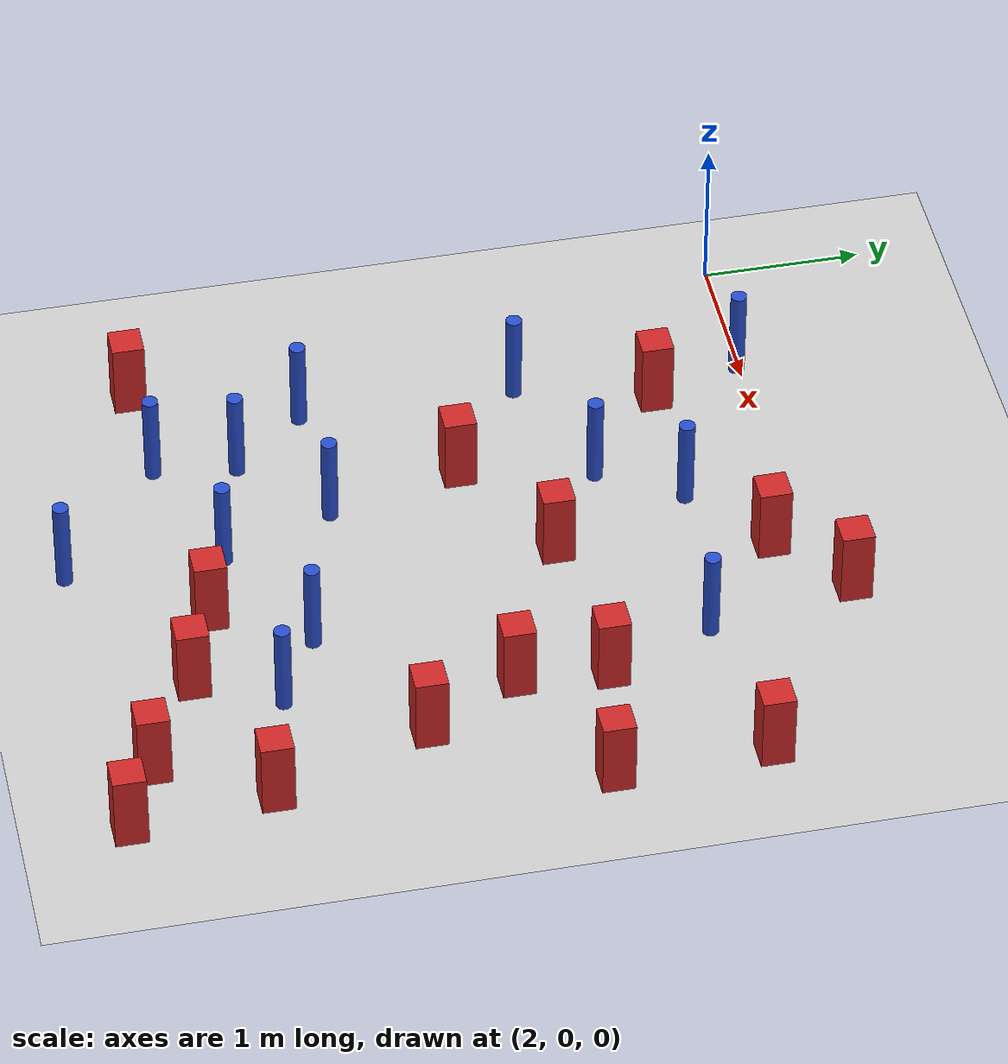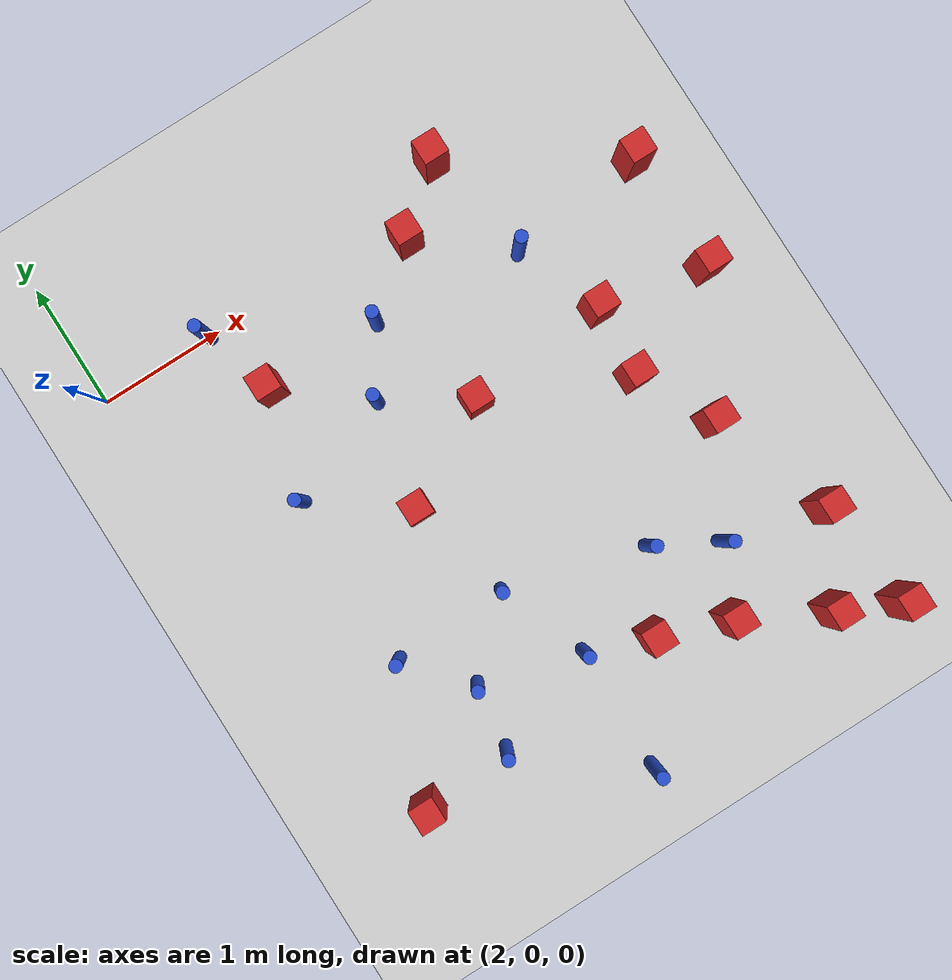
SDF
<sdf version="1.6">
 <world name="default">
  <model name="ground_plane">
   <static>1</static>
   <link name="link">
    <collision name="collision">
     <geometry><plane><normal>0 0 1</normal><size>100 100</size></plane></geometry>
     <surface><friction><ode><mu>100</mu><mu2>50</mu2></ode></friction></surface>
    </collision>
    <visual name="visual">
     <cast_shadows>0</cast_shadows>
     <geometry><plane><normal>0 0 1</normal><size>100 100</size></plane></geometry>
     <material>
      <ambient>1.0 1.0 1.0 1.0</ambient>
      <diffuse>0.8 0.8 0.8 1.0</diffuse>
      <specular>0.01 0.01 0.01 1.000000</specular>
     </material>
    </visual>
   </link>
  </model>
  <model name="square_post_obstacle5">
   <static>true</static>
   <pose>5.47471650672 -1.39341901515 8.22691968438e-08 7.2212513382e-06 -7.54495500217e-07 2.29674213826e-05</pose>
   <link name="link">
    <pose>0 0 0.25 0 -0 0</pose>
    <inertial>
     <mass>100</mass>
     <inertia>
      <ixx>0.166667</ixx>
      <ixy>0</ixy>
      <ixz>0</ixz>
      <iyy>0.166667</iyy>
      <iyz>0</iyz>
      <izz>0.166667</izz>
     </inertia>
    </inertial>
    <collision name="collision"><geometry><box><size>.2 .2 .5</size></box></geometry></collision>
    <visual name="visual">
     <geometry><box><size>.2 .2 .5</size></box></geometry>
     <material>
      <script><name>Gazebo/Red</name><uri>file://media/materials/scripts/gazebo.material</uri></script>
     </material>
    </visual>
   </link>
  </model>
  <model name="square_post_obstacle25">
   <static>true</static>
   <pose>6.18317833185 -4.40697033715 8.22691968438e-08 7.22125133819e-06 -7.54495500217e-07 2.29674213826e-05</pose>
   <link name="link">
    <pose>0 0 0.25 0 -0 0</pose>
    <inertial>
     <mass>100</mass>
     <inertia>
      <ixx>0.166667</ixx>
      <ixy>0</ixy>
      <ixz>0</ixz>
      <iyy>0.166667</iyy>
      <iyz>0</iyz>
      <izz>0.166667</izz>
     </inertia>
    </inertial>
    <collision name="collision"><geometry><box><size>.2 .2 .5</size></box></geometry></collision>
    <visual name="visual">
     <geometry><box><size>.2 .2 .5</size></box></geometry>
     <material>
      <script><name>Gazebo/Red</name><uri>file://media/materials/scripts/gazebo.material</uri></script>
     </material>
    </visual>
   </link>
  </model>
  <model name="pole_obstacle20">
   <static>true</static>
   <pose>3.99719522737 -4.45366541195 2.88873142074e-08 -9.90536690327e-09 4.60219948978e-07 -1.20965994969e-07</pose>
   <link name="link">
    <pose>0 0 0.3 0 -0 0</pose>
    <inertial>
     <mass>1</mass>
     <inertia><ixx>0.145833</ixx><ixy>0</ixy><ixz>0</ixz><iyy>0.145833</iyy><iyz>0</iyz><izz>0.125</izz></inertia>
    </inertial>
    <collision name="collision">
     <geometry><cylinder><radius>0.05</radius><length>.6</length></cylinder></geometry>
    </collision>
    <visual name="visual">
     <geometry><cylinder><radius>0.05</radius><length>.6</length></cylinder></geometry>
     <material>
      <script><name>Gazebo/Blue</name><uri>file://media/materials/scripts/gazebo.material</uri></script>
     </material>
    </visual>
   </link>
  </model>
  <model name="square_post_obstacle34">
   <static>true</static>
   <pose>3.10798686411 -0.59308284486 8.22691968438e-08 7.2212513382e-06 -7.54495500217e-07 2.29674213826e-05</pose>
   <link name="link">
    <pose>0 0 0.25 0 -0 0</pose>
    <inertial>
     <mass>100</mass>
     <inertia>
      <ixx>0.166667</ixx>
      <ixy>0</ixy>
      <ixz>0</ixz>
      <iyy>0.166667</iyy>
      <iyz>0</iyz>
      <izz>0.166667</izz>
     </inertia>
    </inertial>
    <collision name="collision"><geometry><box><size>.2 .2 .5</size></box></geometry></collision>
    <visual name="visual">
     <geometry><box><size>.2 .2 .5</size></box></geometry>
     <material>
      <script><name>Gazebo/Red</name><uri>file://media/materials/scripts/gazebo.material</uri></script>
     </material>
    </visual>
   </link>
  </model>
  <model name="pole_obstacle32">
   <static>true</static>
   <pose>3.23208982439 -3.25956717688 2.88873142074e-08 -9.90536690232e-09 4.6021994898e-07 -1.20965994968e-07</pose>
   <link name="link">
    <pose>0 0 0.3 0 -0 0</pose>
    <inertial>
     <mass>1</mass>
     <inertia><ixx>0.145833</ixx><ixy>0</ixy><ixz>0</ixz><iyy>0.145833</iyy><iyz>0</iyz><izz>0.125</izz></inertia>
    </inertial>
    <collision name="collision">
     <geometry><cylinder><radius>0.05</radius><length>.6</length></cylinder></geometry>
    </collision>
    <visual name="visual">
     <geometry><cylinder><radius>0.05</radius><length>.6</length></cylinder></geometry>
     <material>
      <script><name>Gazebo/Blue</name><uri>file://media/materials/scripts/gazebo.material</uri></script>
     </material>
    </visual>
   </link>
  </model>
  <model name="pole_obstacle37">
   <static>true</static>
   <pose>5.31489590078 -3.34119083142 2.88873142074e-08 -9.90536690245e-09 4.6021994898e-07 -1.20965994966e-07</pose>
   <link name="link">
    <pose>0 0 0.3 0 -0 0</pose>
    <inertial>
     <mass>1</mass>
     <inertia><ixx>0.145833</ixx><ixy>0</ixy><ixz>0</ixz><iyy>0.145833</iyy><iyz>0</iyz><izz>0.125</izz></inertia>
    </inertial>
    <collision name="collision">
     <geometry><cylinder><radius>0.05</radius><length>.6</length></cylinder></geometry>
    </collision>
    <visual name="visual">
     <geometry><cylinder><radius>0.05</radius><length>.6</length></cylinder></geometry>
     <material>
      <script><name>Gazebo/Blue</name><uri>file://media/materials/scripts/gazebo.material</uri></script>
     </material>
    </visual>
   </link>
  </model>
  <model name="pole_obstacle46">
   <static>true</static>
   <pose>4.03366678847 -0.60470468191 2.88873142074e-08 -9.90536689398e-09 4.60219949e-07 -1.20965994956e-07</pose>
   <link name="link">
    <pose>0 0 0.3 0 -0 0</pose>
    <inertial>
     <mass>1</mass>
     <inertia><ixx>0.145833</ixx><ixy>0</ixy><ixz>0</ixz><iyy>0.145833</iyy><iyz>0</iyz><izz>0.125</izz></inertia>
    </inertial>
    <collision name="collision">
     <geometry><cylinder><radius>0.05</radius><length>.6</length></cylinder></geometry>
    </collision>
    <visual name="visual">
     <geometry><cylinder><radius>0.05</radius><length>.6</length></cylinder></geometry>
     <material>
      <script><name>Gazebo/Blue</name><uri>file://media/materials/scripts/gazebo.material</uri></script>
     </material>
    </visual>
   </link>
  </model>
  <model name="pole_obstacle59">
   <static>true</static>
   <pose>2.92207473677 -0.0161002207971 2.88873142074e-08 -9.90536689355e-09 4.60219949001e-07 -1.20965994954e-07</pose>
   <link name="link">
    <pose>0 0 0.3 0 -0 0</pose>
    <inertial>
     <mass>1</mass>
     <inertia><ixx>0.145833</ixx><ixy>0</ixy><ixz>0</ixz><iyy>0.145833</iyy><iyz>0</iyz><izz>0.125</izz></inertia>
    </inertial>
    <collision name="collision">
     <geometry><cylinder><radius>0.05</radius><length>.6</length></cylinder></geometry>
    </collision>
    <visual name="visual">
     <geometry><cylinder><radius>0.05</radius><length>.6</length></cylinder></geometry>
     <material>
      <script><name>Gazebo/Blue</name><uri>file://media/materials/scripts/gazebo.material</uri></script>
     </material>
    </visual>
   </link>
  </model>
  <model name="pole_obstacle66">
   <static>true</static>
   <pose>5.2132037423 -0.721027584315 2.88873142074e-08 -9.90536689837e-09 4.60219948989e-07 -1.2096599496e-07</pose>
   <link name="link">
    <pose>0 0 0.3 0 -0 0</pose>
    <inertial>
     <mass>1</mass>
     <inertia><ixx>0.145833</ixx><ixy>0</ixy><ixz>0</ixz><iyy>0.145833</iyy><iyz>0</iyz><izz>0.125</izz></inertia>
    </inertial>
    <collision name="collision">
     <geometry><cylinder><radius>0.05</radius><length>.6</length></cylinder></geometry>
    </collision>
    <visual name="visual">
     <geometry><cylinder><radius>0.05</radius><length>.6</length></cylinder></geometry>
     <material>
      <script><name>Gazebo/Blue</name><uri>file://media/materials/scripts/gazebo.material</uri></script>
     </material>
    </visual>
   </link>
  </model>
  <model name="square_post_obstacle72">
   <static>true</static>
   <pose>5.72340091215 -4.19345197059 8.22691968438e-08 7.2212513382e-06 -7.54495500217e-07 2.29674213826e-05</pose>
   <link name="link">
    <pose>0 0 0.25 0 -0 0</pose>
    <inertial>
     <mass>100</mass>
     <inertia>
      <ixx>0.166667</ixx>
      <ixy>0</ixy>
      <ixz>0</ixz>
      <iyy>0.166667</iyy>
      <iyz>0</iyz>
      <izz>0.166667</izz>
     </inertia>
    </inertial>
    <collision name="collision"><geometry><box><size>.2 .2 .5</size></box></geometry></collision>
    <visual name="visual">
     <geometry><box><size>.2 .2 .5</size></box></geometry>
     <material>
      <script><name>Gazebo/Red</name><uri>file://media/materials/scripts/gazebo.material</uri></script>
     </material>
    </visual>
   </link>
  </model>
  <model name="pole_obstacle94">
   <static>true</static>
   <pose>3.72324024829 -1.10595730925 2.88873142074e-08 -9.90536689395e-09 4.60219949e-07 -1.20965994953e-07</pose>
   <link name="link">
    <pose>0 0 0.3 0 -0 0</pose>
    <inertial>
     <mass>1</mass>
     <inertia><ixx>0.145833</ixx><ixy>0</ixy><ixz>0</ixz><iyy>0.145833</iyy><iyz>0</iyz><izz>0.125</izz></inertia>
    </inertial>
    <collision name="collision">
     <geometry><cylinder><radius>0.05</radius><length>.6</length></cylinder></geometry>
    </collision>
    <visual name="visual">
     <geometry><cylinder><radius>0.05</radius><length>.6</length></cylinder></geometry>
     <material>
      <script><name>Gazebo/Blue</name><uri>file://media/materials/scripts/gazebo.material</uri></script>
     </material>
    </visual>
   </link>
  </model>
  <model name="pole_obstacle112">
   <static>true</static>
   <pose>2.86412638105 -1.43719556574 2.88873142074e-08 -9.90536689395e-09 4.60219949e-07 -1.20965994953e-07</pose>
   <link name="link">
    <pose>0 0 0.3 0 -0 0</pose>
    <inertial>
     <mass>1</mass>
     <inertia><ixx>0.145833</ixx><ixy>0</ixy><ixz>0</ixz><iyy>0.145833</iyy><iyz>0</iyz><izz>0.125</izz></inertia>
    </inertial>
    <collision name="collision">
     <geometry><cylinder><radius>0.05</radius><length>.6</length></cylinder></geometry>
    </collision>
    <visual name="visual">
     <geometry><cylinder><radius>0.05</radius><length>.6</length></cylinder></geometry>
     <material>
      <script><name>Gazebo/Blue</name><uri>file://media/materials/scripts/gazebo.material</uri></script>
     </material>
    </visual>
   </link>
  </model>
  <model name="pole_obstacle119">
   <static>true</static>
   <pose>3.15659651203 -3.7718616717 2.88873142074e-08 -9.90536690232e-09 4.6021994898e-07 -1.20965994968e-07</pose>
   <link name="link">
    <pose>0 0 0.3 0 -0 0</pose>
    <inertial>
     <mass>1</mass>
     <inertia><ixx>0.145833</ixx><ixy>0</ixy><ixz>0</ixz><iyy>0.145833</iyy><iyz>0</iyz><izz>0.125</izz></inertia>
    </inertial>
    <collision name="collision">
     <geometry><cylinder><radius>0.05</radius><length>.6</length></cylinder></geometry>
    </collision>
    <visual name="visual">
     <geometry><cylinder><radius>0.05</radius><length>.6</length></cylinder></geometry>
     <material>
      <script><name>Gazebo/Blue</name><uri>file://media/materials/scripts/gazebo.material</uri></script>
     </material>
    </visual>
   </link>
  </model>
  <model name="pole_obstacle126">
   <static>true</static>
   <pose>4.83457943428 -3.07667516422 2.88873142074e-08 -9.90536690245e-09 4.6021994898e-07 -1.20965994966e-07</pose>
   <link name="link">
    <pose>0 0 0.3 0 -0 0</pose>
    <inertial>
     <mass>1</mass>
     <inertia><ixx>0.145833</ixx><ixy>0</ixy><ixz>0</ixz><iyy>0.145833</iyy><iyz>0</iyz><izz>0.125</izz></inertia>
    </inertial>
    <collision name="collision">
     <geometry><cylinder><radius>0.05</radius><length>.6</length></cylinder></geometry>
    </collision>
    <visual name="visual">
     <geometry><cylinder><radius>0.05</radius><length>.6</length></cylinder></geometry>
     <material>
      <script><name>Gazebo/Blue</name><uri>file://media/materials/scripts/gazebo.material</uri></script>
     </material>
    </visual>
   </link>
  </model>
  <model name="square_post_obstacle118">
   <static>true</static>
   <pose>4.51066244737 -3.64841370875 8.22691968438e-08 7.2212513382e-06 -7.54495500217e-07 2.29674213826e-05</pose>
   <link name="link">
    <pose>0 0 0.25 0 -0 0</pose>
    <inertial>
     <mass>100</mass>
     <inertia>
      <ixx>0.166667</ixx>
      <ixy>0</ixy>
      <ixz>0</ixz>
      <iyy>0.166667</iyy>
      <iyz>0</iyz>
      <izz>0.166667</izz>
     </inertia>
    </inertial>
    <collision name="collision"><geometry><box><size>.2 .2 .5</size></box></geometry></collision>
    <visual name="visual">
     <geometry><box><size>.2 .2 .5</size></box></geometry>
     <material>
      <script><name>Gazebo/Red</name><uri>file://media/materials/scripts/gazebo.material</uri></script>
     </material>
    </visual>
   </link>
  </model>
  <model name="pole_obstacle142">
   <static>true</static>
   <pose>3.74936654003 -2.77045445652 2.88873142074e-08 -9.90536690232e-09 4.6021994898e-07 -1.20965994968e-07</pose>
   <link name="link">
    <pose>0 0 0.3 0 -0 0</pose>
    <inertial>
     <mass>1</mass>
     <inertia><ixx>0.145833</ixx><ixy>0</ixy><ixz>0</ixz><iyy>0.145833</iyy><iyz>0</iyz><izz>0.125</izz></inertia>
    </inertial>
    <collision name="collision">
     <geometry><cylinder><radius>0.05</radius><length>.6</length></cylinder></geometry>
    </collision>
    <visual name="visual">
     <geometry><cylinder><radius>0.05</radius><length>.6</length></cylinder></geometry>
     <material>
      <script><name>Gazebo/Blue</name><uri>file://media/materials/scripts/gazebo.material</uri></script>
     </material>
    </visual>
   </link>
  </model>
  <model name="square_post_obstacle145">
   <static>true</static>
   <pose>6.08742589796 -3.52667765731 8.22691968438e-08 7.2212513382e-06 -7.54495500217e-07 2.29674213826e-05</pose>
   <link name="link">
    <pose>0 0 0.25 0 -0 0</pose>
    <inertial>
     <mass>100</mass>
     <inertia>
      <ixx>0.166667</ixx>
      <ixy>0</ixy>
      <ixz>0</ixz>
      <iyy>0.166667</iyy>
      <iyz>0</iyz>
      <izz>0.166667</izz>
     </inertia>
    </inertial>
    <collision name="collision"><geometry><box><size>.2 .2 .5</size></box></geometry></collision>
    <visual name="visual">
     <geometry><box><size>.2 .2 .5</size></box></geometry>
     <material>
      <script><name>Gazebo/Red</name><uri>file://media/materials/scripts/gazebo.material</uri></script>
     </material>
    </visual>
   </link>
  </model>
  <model name="square_post_obstacle148">
   <static>true</static>
   <pose>3.55038360704 -1.93244834086 8.22691968438e-08 7.22125133819e-06 -7.54495500217e-07 2.29674213826e-05</pose>
   <link name="link">
    <pose>0 0 0.25 0 -0 0</pose>
    <inertial>
     <mass>100</mass>
     <inertia>
      <ixx>0.166667</ixx>
      <ixy>0</ixy>
      <ixz>0</ixz>
      <iyy>0.166667</iyy>
      <iyz>0</iyz>
      <izz>0.166667</izz>
     </inertia>
    </inertial>
    <collision name="collision"><geometry><box><size>.2 .2 .5</size></box></geometry></collision>
    <visual name="visual">
     <geometry><box><size>.2 .2 .5</size></box></geometry>
     <material>
      <script><name>Gazebo/Red</name><uri>file://media/materials/scripts/gazebo.material</uri></script>
     </material>
    </visual>
   </link>
  </model>
  <model name="square_post_obstacle149">
   <static>true</static>
   <pose>6.29930057717 -0.593651646372 8.22691968438e-08 7.2212513382e-06 -7.54495500217e-07 2.29674213826e-05</pose>
   <link name="link">
    <pose>0 0 0.25 0 -0 0</pose>
    <inertial>
     <mass>100</mass>
     <inertia>
      <ixx>0.166667</ixx>
      <ixy>0</ixy>
      <ixz>0</ixz>
      <iyy>0.166667</iyy>
      <iyz>0</iyz>
      <izz>0.166667</izz>
     </inertia>
    </inertial>
    <collision name="collision"><geometry><box><size>.2 .2 .5</size></box></geometry></collision>
    <visual name="visual">
     <geometry><box><size>.2 .2 .5</size></box></geometry>
     <material>
      <script><name>Gazebo/Red</name><uri>file://media/materials/scripts/gazebo.material</uri></script>
     </material>
    </visual>
   </link>
  </model>
  <model name="square_post_obstacle153">
   <static>true</static>
   <pose>5.0288920942 0.202066430515 8.22691968438e-08 7.2212513382e-06 -7.54495500217e-07 2.29674213826e-05</pose>
   <link name="link">
    <pose>0 0 0.25 0 -0 0</pose>
    <inertial>
     <mass>100</mass>
     <inertia>
      <ixx>0.166667</ixx>
      <ixy>0</ixy>
      <ixz>0</ixz>
      <iyy>0.166667</iyy>
      <iyz>0</iyz>
      <izz>0.166667</izz>
     </inertia>
    </inertial>
    <collision name="collision"><geometry><box><size>.2 .2 .5</size></box></geometry></collision>
    <visual name="visual">
     <geometry><box><size>.2 .2 .5</size></box></geometry>
     <material>
      <script><name>Gazebo/Red</name><uri>file://media/materials/scripts/gazebo.material</uri></script>
     </material>
    </visual>
   </link>
  </model>
  <model name="pole_obstacle176">
   <static>true</static>
   <pose>4.01826266544 -3.47602512839 2.88873142074e-08 -9.90536689988e-09 4.60219948986e-07 -1.20965994963e-07</pose>
   <link name="link">
    <pose>0 0 0.3 0 -0 0</pose>
    <inertial>
     <mass>1</mass>
     <inertia><ixx>0.145833</ixx><ixy>0</ixy><ixz>0</ixz><iyy>0.145833</iyy><iyz>0</iyz><izz>0.125</izz></inertia>
    </inertial>
    <collision name="collision">
     <geometry><cylinder><radius>0.05</radius><length>.6</length></cylinder></geometry>
    </collision>
    <visual name="visual">
     <geometry><cylinder><radius>0.05</radius><length>.6</length></cylinder></geometry>
     <material>
      <script><name>Gazebo/Blue</name><uri>file://media/materials/scripts/gazebo.material</uri></script>
     </material>
    </visual>
   </link>
  </model>
  <model name="square_post_obstacle165">
   <static>true</static>
   <pose>6.32326160724 -1.55364122729 8.22691968438e-08 7.2212513382e-06 -7.54495500217e-07 2.29674213826e-05</pose>
   <link name="link">
    <pose>0 0 0.25 0 -0 0</pose>
    <inertial>
     <mass>100</mass>
     <inertia>
      <ixx>0.166667</ixx>
      <ixy>0</ixy>
      <ixz>0</ixz>
      <iyy>0.166667</iyy>
      <iyz>0</iyz>
      <izz>0.166667</izz>
     </inertia>
    </inertial>
    <collision name="collision"><geometry><box><size>.2 .2 .5</size></box></geometry></collision>
    <visual name="visual">
     <geometry><box><size>.2 .2 .5</size></box></geometry>
     <material>
      <script><name>Gazebo/Red</name><uri>file://media/materials/scripts/gazebo.material</uri></script>
     </material>
    </visual>
   </link>
  </model>
  <model name="square_post_obstacle176">
   <static>true</static>
   <pose>5.06876502787 -3.85027844527 8.22691968438e-08 7.2212513382e-06 -7.54495500217e-07 2.29674213826e-05</pose>
   <link name="link">
    <pose>0 0 0.25 0 -0 0</pose>
    <inertial>
     <mass>100</mass>
     <inertia>
      <ixx>0.166667</ixx>
      <ixy>0</ixy>
      <ixz>0</ixz>
      <iyy>0.166667</iyy>
      <iyz>0</iyz>
      <izz>0.166667</izz>
     </inertia>
    </inertial>
    <collision name="collision"><geometry><box><size>.2 .2 .5</size></box></geometry></collision>
    <visual name="visual">
     <geometry><box><size>.2 .2 .5</size></box></geometry>
     <material>
      <script><name>Gazebo/Red</name><uri>file://media/materials/scripts/gazebo.material</uri></script>
     </material>
    </visual>
   </link>
  </model>
  <model name="square_post_obstacle188">
   <static>true</static>
   <pose>2.45569189935 -3.81207782526 8.22691968438e-08 7.2212513382e-06 -7.54495500217e-07 2.29674213826e-05</pose>
   <link name="link">
    <pose>0 0 0.25 0 -0 0</pose>
    <inertial>
     <mass>100</mass>
     <inertia>
      <ixx>0.166667</ixx>
      <ixy>0</ixy>
      <ixz>0</ixz>
      <iyy>0.166667</iyy>
      <iyz>0</iyz>
      <izz>0.166667</izz>
     </inertia>
    </inertial>
    <collision name="collision"><geometry><box><size>.2 .2 .5</size></box></geometry></collision>
    <visual name="visual">
     <geometry><box><size>.2 .2 .5</size></box></geometry>
     <material>
      <script><name>Gazebo/Red</name><uri>file://media/materials/scripts/gazebo.material</uri></script>
     </material>
    </visual>
   </link>
  </model>
  <model name="square_post_obstacle196">
   <static>true</static>
   <pose>5.74513138275 -2.54898648247 8.22691968438e-08 7.2212513382e-06 -7.54495500217e-07 2.29674213826e-05</pose>
   <link name="link">
    <pose>0 0 0.25 0 -0 0</pose>
    <inertial>
     <mass>100</mass>
     <inertia>
      <ixx>0.166667</ixx>
      <ixy>0</ixy>
      <ixz>0</ixz>
      <iyy>0.166667</iyy>
      <iyz>0</iyz>
      <izz>0.166667</izz>
     </inertia>
    </inertial>
    <collision name="collision"><geometry><box><size>.2 .2 .5</size></box></geometry></collision>
    <visual name="visual">
     <geometry><box><size>.2 .2 .5</size></box></geometry>
     <material>
      <script><name>Gazebo/Red</name><uri>file://media/materials/scripts/gazebo.material</uri></script>
     </material>
    </visual>
   </link>
  </model>
  <model name="square_post_obstacle208">
   <static>true</static>
   <pose>5.4316096557 -1.95740402099 8.22691968438e-08 7.2212513382e-06 -7.54495500217e-07 2.29674213826e-05</pose>
   <link name="link">
    <pose>0 0 0.25 0 -0 0</pose>
    <inertial>
     <mass>100</mass>
     <inertia>
      <ixx>0.166667</ixx>
      <ixy>0</ixy>
      <ixz>0</ixz>
      <iyy>0.166667</iyy>
      <iyz>0</iyz>
      <izz>0.166667</izz>
     </inertia>
    </inertial>
    <collision name="collision"><geometry><box><size>.2 .2 .5</size></box></geometry></collision>
    <visual name="visual">
     <geometry><box><size>.2 .2 .5</size></box></geometry>
     <material>
      <script><name>Gazebo/Red</name><uri>file://media/materials/scripts/gazebo.material</uri></script>
     </material>
    </visual>
   </link>
  </model>
  <model name="square_post_obstacle221">
   <static>true</static>
   <pose>4.55579915369 -0.190954630287 8.22691968438e-08 7.2212513382e-06 -7.54495500217e-07 2.29674213826e-05</pose>
   <link name="link">
    <pose>0 0 0.25 0 -0 0</pose>
    <inertial>
     <mass>100</mass>
     <inertia>
      <ixx>0.166667</ixx>
      <ixy>0</ixy>
      <ixz>0</ixz>
      <iyy>0.166667</iyy>
      <iyz>0</iyz>
      <izz>0.166667</izz>
     </inertia>
    </inertial>
    <collision name="collision"><geometry><box><size>.2 .2 .5</size></box></geometry></collision>
    <visual name="visual">
     <geometry><box><size>.2 .2 .5</size></box></geometry>
     <material>
      <script><name>Gazebo/Red</name><uri>file://media/materials/scripts/gazebo.material</uri></script>
     </material>
    </visual>
   </link>
  </model>
  <model name="square_post_obstacle222">
   <static>true</static>
   <pose>4.34488248595 -1.48602986686 8.22691968438e-08 7.2212513382e-06 -7.54495500217e-07 2.29674213826e-05</pose>
   <link name="link">
    <pose>0 0 0.25 0 -0 0</pose>
    <inertial>
     <mass>100</mass>
     <inertia>
      <ixx>0.166667</ixx>
      <ixy>0</ixy>
      <ixz>0</ixz>
      <iyy>0.166667</iyy>
      <iyz>0</iyz>
      <izz>0.166667</izz>
     </inertia>
    </inertial>
    <collision name="collision"><geometry><box><size>.2 .2 .5</size></box></geometry></collision>
    <visual name="visual">
     <geometry><box><size>.2 .2 .5</size></box></geometry>
     <material>
      <script><name>Gazebo/Red</name><uri>file://media/materials/scripts/gazebo.material</uri></script>
     </material>
    </visual>
   </link>
  </model>
  <model name="pole_obstacle207">
   <static>true</static>
   <pose>2.84350000913 -2.79957997959 2.88873142074e-08 -9.90536692158e-09 4.60219948934e-07 -1.20965994986e-07</pose>
   <link name="link">
    <pose>0 0 0.3 0 -0 0</pose>
    <inertial>
     <mass>1</mass>
     <inertia><ixx>0.145833</ixx><ixy>0</ixy><ixz>0</ixz><iyy>0.145833</iyy><iyz>0</iyz><izz>0.125</izz></inertia>
    </inertial>
    <collision name="collision">
     <geometry><cylinder><radius>0.05</radius><length>.6</length></cylinder></geometry>
    </collision>
    <visual name="visual">
     <geometry><cylinder><radius>0.05</radius><length>.6</length></cylinder></geometry>
     <material>
      <script><name>Gazebo/Blue</name><uri>file://media/materials/scripts/gazebo.material</uri></script>
     </material>
    </visual>
   </link>
  </model>
 </world>
</sdf>
